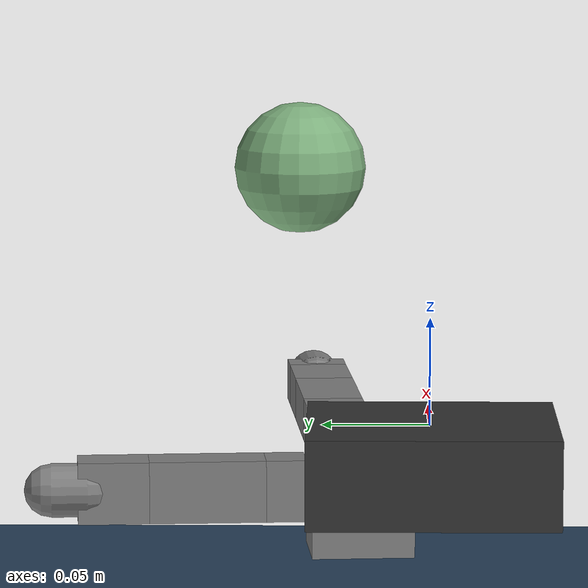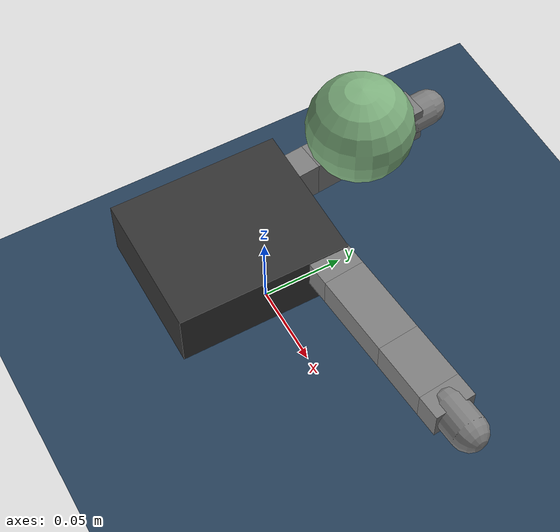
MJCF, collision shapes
<mujoco model="left_allegro_hand scene">
  <include file="left_hand_2finger.xml"/>

  <statistic center="0 0 0" extent="0.3"/>

  <visual>
    <rgba haze="0.15 0.25 0.35 1"/>
    <quality shadowsize="8192"/>
    <global azimuth="220" elevation="-40"/>
  </visual>

  <asset>
    <texture type="skybox" builtin="gradient" rgb1="0.3 0.5 0.7" rgb2="0 0 0" width="512" height="3072"/>
    <texture type="2d" name="groundplane" builtin="checker" mark="edge" rgb1="0.2 0.3 0.4" rgb2="0.1 0.2 0.3"
      markrgb="0.8 0.8 0.8" width="300" height="300"/>
    <material name="groundplane" texture="groundplane" texuniform="true" texrepeat="5 5" reflectance="0.2"/>
  </asset>

  <!-- Set initial keyframe with grasp configuration -->
  <keyframe>
    <key name="initial_grasp"
         qpos="-0.1 1.2 0.4 0.47 1.0 0.7 0.45 0.47    0.00 0.06 0.12  1 0 0 0"
         ctrl="-0.1 1.2 0.4 0.47 1.0 0.7 0.45 0.47"/>

    <!-- NEW: Open hand configuration for testing (no object interaction) -->
    <key name="open_hand_test"
        qpos="0.0 0.5 0.3 0.2 0.5 0.5 0.3 0.2    0.00 0.06 0.50  1 0 0 0"
        ctrl="0.0 0.5 0.3 0.2 0.5 0.5 0.3 0.2"/>
    <!-- qpos layout:
         [0-7]: joint positions for ffj0-3, thj0-3
         [8-10]: object position (x, y, z)
         [11-14]: object quaternion (w, x, y, z)
    -->
  </keyframe>

  <worldbody>
    <light pos="0 0 1"/>
    <light pos="0.3 0 1.5" dir="0 0 -1" directional="true"/>
    <geom name="floor" pos="0 0 -0.1" size="0 0 0.05" type="plane" material="groundplane"/>

    <!-- Object positioned between fingers in the air -->
    <body name="object" pos="0.00 0.06 0.12">
      <freejoint/>
      <geom name="object_geom" type="sphere" size="0.03 0.02 0.04" rgba="0.5 0.7 0.5 1"
        condim="6" priority="1" friction="0.7 0.005 0.005" mass="0.05"/>
        <site name="object_center" pos="0 0 0" size="0.005" rgba="1 0 0 1"/>
    </body>
  </worldbody>
</mujoco>

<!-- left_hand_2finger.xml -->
<mujoco model="allegro_left_2finger">
  <compiler angle="radian" meshdir="assets" autolimits="true"/>

  <option cone="elliptic" impratio="10"/>

  <default>
    <default class="allegro_left_2finger">
      <joint axis="0 1 0" damping=".1"/>
      <position kp="1"/>
      <geom density="800"/>

      <default class="visual">
        <geom type="mesh" contype="0" conaffinity="0" group="2" material="black"/>
        <default class="base_visual">
          <geom mesh="link_0.0"/>
        </default>
        <default class="proximal_visual">
          <geom mesh="link_1.0"/>
        </default>
        <default class="medial_visual">
          <geom mesh="link_2.0"/>
        </default>
        <default class="distal_visual">
          <geom mesh="link_3.0"/>
        </default>
        <default class="fingertip_visual">
          <geom pos="0 0 0.0267" material="white" mesh="link_3.0_tip"/>
        </default>
        <default class="thumbtip_visual">
          <geom pos="0 0 0.0423" material="white" mesh="link_15.0_tip"/>
        </default>
      </default>

      <default class="collision">
        <geom group="3" type="box" mass="0"/>
        <default class="palm_collision">
          <geom size="0.0204 0.0565 0.0475" pos="-0.0093 0 -0.0475"/>
        </default>
        <default class="base_collision">
          <geom size="0.0098 0.01375 0.0082" pos="0 0 0.0082"/>
          <default class="thumb_base_collision">
            <geom size="0.0179 0.017 0.02275" pos="-0.0179 0.009 0.0145"/>
          </default>
        </default>
        <default class="proximal_collision">
          <geom size="0.0098 0.01375 0.027" pos="0 0 0.027"/>
          <default class="thumb_proximal_collision">
            <geom size="0.0098 0.01375 0.00885" pos="0 0 0.00885"/>
          </default>
        </default>
        <default class="medial_collision">
          <geom size="0.0098 0.01375 0.0192" pos="0 0 0.0192"/>
          <default class="thumb_medial_collision">
            <geom size="0.0098 0.01375 0.0257" pos="0 0 0.0257"/>
          </default>
        </default>
        <default class="distal_collision">
          <geom size="0.0098 0.01375 0.008" pos="0 0 0.008"/>
          <default class="thumb_distal_collision">
            <geom size="0.0098 0.01375 0.0157" pos="0 0 0.0157"/>
          </default>
        </default>
        <default class="fingertip_collision">
          <geom type="capsule" size="0.012 0.01" pos="0 0 0.019"/>
          <default class="thumbtip_collision">
            <geom type="capsule" size="0.012 0.008" pos="0 0 0.035"/>
          </default>
        </default>
      </default>

      <default class="base">
        <joint axis="0 0 1" range="-0.47 0.47"/>
        <position ctrlrange="-0.47 0.47"/>
      </default>
      <default class="proximal">
        <joint range="-0.196 1.61"/>
        <position ctrlrange="-0.196 1.61"/>
      </default>
      <default class="medial">
        <joint range="-0.174 1.709"/>
        <position ctrlrange="-0.174 1.709"/>
      </default>
      <default class="distal">
        <joint range="-0.227 1.618"/>
        <position ctrlrange="-0.227 1.618"/>
      </default>
      <default class="thumb_base">
        <joint axis="1 0 0" range="0.263 1.396"/>
        <position ctrlrange="0.263 1.396"/>
      </default>
      <default class="thumb_proximal">
        <joint axis="0 0 -1" range="-0.105 1.163"/>
        <position ctrlrange="-0.105 1.163"/>
      </default>
      <default class="thumb_medial">
        <joint range="-0.189 1.644"/>
        <position ctrlrange="-0.189 1.644"/>
      </default>
      <default class="thumb_distal">
        <joint range="-0.162 1.719"/>
        <position ctrlrange="-0.162 1.719"/>
      </default>
    </default>
  </default>

  <asset>
    <material name="black" rgba="0.2 0.2 0.2 1"/>
    <material name="white" rgba="0.9 0.9 0.9 1"/>

    <!-- keep meshes for ff + thumb only -->
    <!-- NOTE: we no longer visually use base_link_left.stl to avoid extra fingers -->
    <mesh file="link_0.0.stl"/>
    <mesh file="link_1.0.stl"/>
    <mesh file="link_2.0.stl"/>
    <mesh file="link_3.0.stl"/>
    <mesh file="link_3.0_tip.stl"/>
    <mesh file="link_12.0_left.stl"/>
    <mesh file="link_13.0.stl"/>
    <mesh file="link_14.0.stl"/>
    <mesh file="link_15.0.stl"/>
    <mesh file="link_15.0_tip.stl"/>
  </asset>

  <worldbody>
    <body name="palm" quat="0 1 0 1" childclass="allegro_left_2finger">
      <!-- Replaced mesh palm with a simple box visual -->
      <geom type="box" size="0.0204 0.0565 0.0475" pos="-0.0093 0 -0.0475" contype="0" conaffinity="0" material="black"/>
      <geom class="palm_collision"/>

      <!-- First finger -->
      <body name="ff_base" pos="0 -0.0435 -0.001542" quat="0.999048 0.0436194 0 0">
        <joint name="ffj0" class="base"/>
        <geom class="base_visual"/>
        <geom class="base_collision"/>
        <body name="ff_proximal" pos="0 0 0.0164">
          <joint name="ffj1" class="proximal"/>
          <geom class="proximal_visual"/>
          <geom class="proximal_collision"/>
          <body name="ff_medial" pos="0 0 0.054">
            <joint name="ffj2" class="medial"/>
            <geom class="medial_visual"/>
            <geom class="medial_collision"/>
            <body name="ff_distal" pos="0 0 0.0384">
              <joint name="ffj3" class="distal"/>
              <geom class="distal_visual"/>
              <geom class="distal_collision"/>
              <body name="ff_tip">
                <geom class="fingertip_visual"/>
                <geom class="fingertip_collision"/>
              </body>
            </body>
          </body>
        </body>
      </body>

      <!-- Thumb -->
      <body name="th_base" pos="-0.0182 -0.019333 -0.045987" quat="0.477714 0.521334 -0.521334 0.477714">
        <joint name="thj0" class="thumb_base"/>
        <geom quat="0 1 0 0" class="visual" mesh="link_12.0_left"/>
        <geom class="thumb_base_collision"/>
        <body name="th_proximal" pos="-0.027 -0.005 0.0399">
          <joint name="thj1" class="thumb_proximal"/>
          <geom class="visual" mesh="link_13.0"/>
          <geom class="thumb_proximal_collision"/>
          <body name="th_medial" pos="0 0 0.0177">
            <joint name="thj2" class="thumb_medial"/>
            <geom class="visual" mesh="link_14.0"/>
            <geom class="thumb_medial_collision"/>
            <body name="th_distal" pos="0 0 0.0514">
              <joint name="thj3" class="thumb_distal"/>
              <geom class="visual" mesh="link_15.0"/>
              <geom class="thumb_distal_collision"/>
              <body name="th_tip">
                <geom class="thumbtip_visual"/>
                <geom class="thumbtip_collision"/>
              </body>
            </body>
          </body>
        </body>
      </body>
    </body>
  </worldbody>

  <!-- Cleaned contact: removed mf_* and rf_* -->
  <contact>
    <exclude body1="palm" body2="ff_base"/>
    <exclude body1="palm" body2="th_base"/>
    <exclude body1="palm" body2="th_proximal"/>
  </contact>

  <!-- Cleaned actuators: only ff_* and th_* -->
  <actuator>
    <position name="ffa0" joint="ffj0" class="base"/>
    <position name="ffa1" joint="ffj1" class="proximal"/>
    <position name="ffa2" joint="ffj2" class="medial"/>
    <position name="ffa3" joint="ffj3" class="distal"/>

    <position name="tha0" joint="thj0" class="thumb_base"/>
    <position name="tha1" joint="thj1" class="thumb_proximal"/>
    <position name="tha2" joint="thj2" class="thumb_medial"/>
    <position name="tha3" joint="thj3" class="thumb_distal"/>
  </actuator>
</mujoco>
